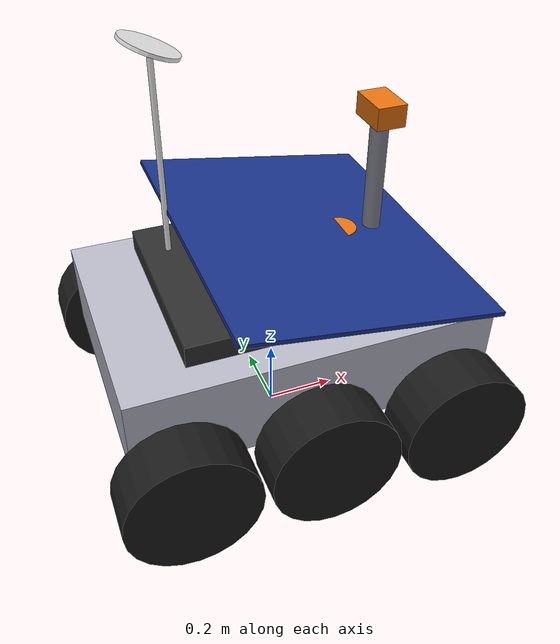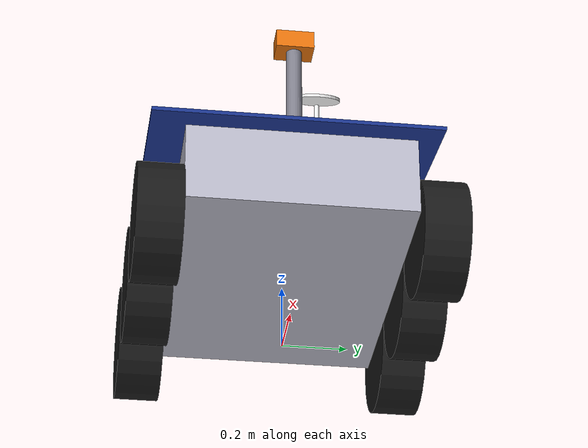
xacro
<?xml version="1.0"?>
<robot name="lunar_rover" xmlns:xacro="http://www.ros.org/wiki/xacro">

  <!-- ═══════════════════════════════════════════════════════════════════════
       MATERIAL DEFINITIONS
  ═══════════════════════════════════════════════════════════════════════════ -->
  <material name="chassis_silver">
    <color rgba="0.72 0.72 0.78 1.0"/>
  </material>
  <material name="dark_grey">
    <color rgba="0.18 0.18 0.18 1.0"/>
  </material>
  <material name="rubber_black">
    <color rgba="0.10 0.10 0.10 1.0"/>
  </material>
  <material name="solar_blue">
    <color rgba="0.10 0.20 0.55 1.0"/>
  </material>
  <material name="antenna_white">
    <color rgba="0.92 0.92 0.92 1.0"/>
  </material>
  <material name="sensor_orange">
    <color rgba="0.90 0.45 0.05 1.0"/>
  </material>
  <material name="mast_grey">
    <color rgba="0.50 0.50 0.55 1.0"/>
  </material>

  <!-- Solid box inertia: m, x=length, y=width, z=height -->
  <xacro:macro name="box_inertia" params="m x y z">
    <inertial>
      <mass value="${m}"/>
      <origin xyz="0 0 0" rpy="0 0 0"/>
      <inertia
        ixx="${(1.0/12.0) * m * (y*y + z*z)}"
        iyy="${(1.0/12.0) * m * (x*x + z*z)}"
        izz="${(1.0/12.0) * m * (x*x + y*y)}"
        ixy="0" ixz="0" iyz="0"/>
    </inertial>
  </xacro:macro>

  <!-- Solid cylinder inertia: m=mass, r=radius, l=length, axis along Z -->
  <xacro:macro name="cylinder_inertia" params="m r l">
    <inertial>
      <mass value="${m}"/>
      <origin xyz="0 0 0" rpy="0 0 0"/>
      <inertia
        ixx="${(1.0/12.0) * m * (3.0*r*r + l*l)}"
        iyy="${(1.0/12.0) * m * (3.0*r*r + l*l)}"
        izz="${0.5 * m * r * r}"
        ixy="0" ixz="0" iyz="0"/>
    </inertial>
  </xacro:macro>

  <!-- Thin cylinder inertia for wheel (axis along Y after rpy="1.5707 0 0") -->
  <xacro:macro name="wheel_inertia" params="m r l">
    <inertial>
      <mass value="${m}"/>
      <origin xyz="0 0 0" rpy="0 0 0"/>
      <inertia
        ixx="${(1.0/12.0) * m * (3.0*r*r + l*l)}"
        iyy="${0.5 * m * r * r}"
        izz="${(1.0/12.0) * m * (3.0*r*r + l*l)}"
        ixy="0" ixz="0" iyz="0"/>
    </inertial>
  </xacro:macro>

  <!-- ═══════════════════════════════════════════════════════════════════════
       BASE FOOTPRINT — The grounded TF origin
  ═══════════════════════════════════════════════════════════════════════════ -->
  <link name="base_footprint"/>

  <joint name="base_footprint_joint" type="fixed">
    <parent link="base_footprint"/>
    <child link="base_link"/>
    <!-- Chassis centre is 0.330m above ground (wheel_radius=0.18, wheel_joint_z=-0.150) -->
    <origin xyz="0 0 0.330" rpy="0 0 0"/>
  </joint>

  <link name="base_link">

    <!-- Main body box -->
    <visual>
      <origin xyz="0 0 0" rpy="0 0 0"/>
      <geometry>
        <box size="1.0 0.7 0.25"/>
      </geometry>
      <material name="chassis_silver"/>
    </visual>

    <collision>
      <origin xyz="0 0 0" rpy="0 0 0"/>
      <geometry>
        <box size="1.0 0.7 0.25"/>
      </geometry>
    </collision>

    <!-- Chassis inertia: 15kg, 1.0 x 0.7 x 0.25 -->
    <xacro:box_inertia m="15.0" x="1.0" y="0.7" z="0.25"/>

  </link>

  <!-- Equipment deck on top of chassis -->
  <joint name="deck_joint" type="fixed">
    <parent link="base_link"/>
    <child link="equipment_deck"/>
    <origin xyz="0 0 0.165" rpy="0 0 0"/>
  </joint>

  <link name="equipment_deck">
    <visual>
      <origin xyz="0 0 0" rpy="0 0 0"/>
      <geometry>
        <box size="0.65 0.55 0.06"/>
      </geometry>
      <material name="dark_grey"/>
    </visual>
    <collision>
      <origin xyz="0 0 0" rpy="0 0 0"/>
      <geometry>
        <box size="0.65 0.55 0.06"/>
      </geometry>
    </collision>
    <xacro:box_inertia m="1.0" x="0.65" y="0.55" z="0.06"/>
  </link>

  <joint name="solar_panel_joint" type="fixed">
    <parent link="equipment_deck"/>
    <child link="solar_panel"/>
    <!-- Raised above equipment deck, slight rearward tilt -->
    <origin xyz="0.1 0 0.10" rpy="0 0.15 0"/>
  </joint>

  <link name="solar_panel">
    <visual>
      <origin xyz="0 0 0" rpy="0 0 0"/>
      <geometry>
        <box size="0.7 0.9 0.012"/>
      </geometry>
      <material name="solar_blue"/>
    </visual>
    <collision>
      <origin xyz="0 0 0" rpy="0 0 0"/>
      <geometry>
        <box size="0.7 0.9 0.012"/>
      </geometry>
    </collision>
    <xacro:box_inertia m="0.8" x="0.7" y="0.9" z="0.012"/>
  </link>

  <joint name="camera_mast_joint" type="fixed">
    <parent link="equipment_deck"/>
    <child link="camera_mast"/>
    <origin xyz="0.30 0 0.20" rpy="0 0 0"/>
  </joint>

  <link name="camera_mast">
    <visual>
      <origin xyz="0 0 0" rpy="0 0 0"/>
      <geometry>
        <cylinder radius="0.025" length="0.40"/>
      </geometry>
      <material name="mast_grey"/>
    </visual>
    <collision>
      <origin xyz="0 0 0" rpy="0 0 0"/>
      <geometry>
        <cylinder radius="0.025" length="0.40"/>
      </geometry>
    </collision>
    <xacro:cylinder_inertia m="0.4" r="0.025" l="0.40"/>
  </link>

  <!-- Camera head at top of mast -->
  <joint name="camera_head_joint" type="fixed">
    <parent link="camera_mast"/>
    <child link="camera_link"/>
    <origin xyz="0 0 0.22" rpy="0 0 0"/>
  </joint>

  <link name="camera_link">
    <visual>
      <origin xyz="0 0 0" rpy="0 0 0"/>
      <geometry>
        <box size="0.08 0.12 0.06"/>
      </geometry>
      <material name="sensor_orange"/>
    </visual>
    <collision>
      <origin xyz="0 0 0" rpy="0 0 0"/>
      <geometry>
        <box size="0.08 0.12 0.06"/>
      </geometry>
    </collision>
    <xacro:box_inertia m="0.3" x="0.08" y="0.12" z="0.06"/>
  </link>

  <!-- Camera optical frame (for RViz camera display) -->
  <joint name="camera_optical_joint" type="fixed">
    <parent link="camera_link"/>
    <child link="camera_optical_frame"/>
    <!-- Rotate to camera convention: Z forward, X right, Y down -->
    <origin xyz="0.04 0 0" rpy="${-pi/2} 0 ${-pi/2}"/>
  </joint>

  <link name="camera_optical_frame"/>

  <joint name="antenna_joint" type="fixed">
    <parent link="equipment_deck"/>
    <child link="antenna"/>
    <origin xyz="-0.25 0.15 0.30" rpy="0 0 0"/>
  </joint>

  <link name="antenna">
    <visual>
      <origin xyz="0 0 0" rpy="0 0 0"/>
      <geometry>
        <cylinder radius="0.008" length="0.55"/>
      </geometry>
      <material name="antenna_white"/>
    </visual>
    <collision>
      <origin xyz="0 0 0" rpy="0 0 0"/>
      <geometry>
        <cylinder radius="0.008" length="0.55"/>
      </geometry>
    </collision>
    <xacro:cylinder_inertia m="0.15" r="0.008" l="0.55"/>
  </link>

  <!-- Antenna dish at top -->
  <joint name="antenna_dish_joint" type="fixed">
    <parent link="antenna"/>
    <child link="antenna_dish"/>
    <origin xyz="0 0 0.30" rpy="0 0.4 0"/>
  </joint>

  <link name="antenna_dish">
    <visual>
      <origin xyz="0 0 0" rpy="0 0 0"/>
      <geometry>
        <cylinder radius="0.08" length="0.01"/>
      </geometry>
      <material name="antenna_white"/>
    </visual>
    <collision>
      <origin xyz="0 0 0" rpy="0 0 0"/>
      <geometry>
        <cylinder radius="0.08" length="0.01"/>
      </geometry>
    </collision>
    <xacro:cylinder_inertia m="0.05" r="0.08" l="0.01"/>
  </link>

  <joint name="lidar_joint" type="fixed">
    <parent link="equipment_deck"/>
    <child link="lidar_link"/>
    <origin xyz="0.20 0 0.06" rpy="0 0 0"/>
  </joint>

  <link name="lidar_link">
    <visual>
      <origin xyz="0 0 0" rpy="0 0 0"/>
      <geometry>
        <cylinder radius="0.05" length="0.06"/>
      </geometry>
      <material name="sensor_orange"/>
    </visual>
    <collision>
      <origin xyz="0 0 0" rpy="0 0 0"/>
      <geometry>
        <cylinder radius="0.05" length="0.06"/>
      </geometry>
    </collision>
    <xacro:cylinder_inertia m="0.3" r="0.05" l="0.06"/>
  </link>

  <joint name="imu_joint" type="fixed">
    <parent link="base_link"/>
    <child link="imu_link"/>
    <origin xyz="0 0 0.07" rpy="0 0 0"/>
  </joint>

  <link name="imu_link">
    <visual>
      <origin xyz="0 0 0" rpy="0 0 0"/>
      <geometry>
        <box size="0.04 0.04 0.02"/>
      </geometry>
      <material name="dark_grey"/>
    </visual>
    <xacro:box_inertia m="0.05" x="0.04" y="0.04" z="0.02"/>
  </link>

  <gazebo reference="lidar_link">
    <sensor name="lidar" type="gpu_lidar">
      <topic>scan</topic>
      <gz_frame_id>lidar_link</gz_frame_id>
      <update_rate>10</update_rate>
      <always_on>1</always_on>
      <visualize>true</visualize>
      <lidar>
        <scan>
          <horizontal>
            <samples>360</samples>
            <resolution>1</resolution>
            <min_angle>-3.14159</min_angle>
            <max_angle>3.14159</max_angle>
          </horizontal>
          <vertical>
            <samples>1</samples>
            <resolution>1</resolution>
            <min_angle>0</min_angle>
            <max_angle>0</max_angle>
          </vertical>
        </scan>
        <range>
          <min>0.12</min>
          <max>12.0</max>
          <resolution>0.01</resolution>
        </range>
        <noise>
          <type>gaussian</type>
          <mean>0.0</mean>
          <stddev>0.01</stddev>
        </noise>
      </lidar>
    </sensor>
  </gazebo>

  <gazebo reference="imu_link">
    <sensor name="imu" type="imu">
      <topic>imu/data</topic>
      <gz_frame_id>imu_link</gz_frame_id>
      <update_rate>50</update_rate>
      <always_on>1</always_on>
      <imu>
        <angular_velocity>
          <x><noise type="gaussian"><mean>0</mean><stddev>0.002</stddev></noise></x>
          <y><noise type="gaussian"><mean>0</mean><stddev>0.002</stddev></noise></y>
          <z><noise type="gaussian"><mean>0</mean><stddev>0.002</stddev></noise></z>
        </angular_velocity>
        <linear_acceleration>
          <x><noise type="gaussian"><mean>0</mean><stddev>0.017</stddev></noise></x>
          <y><noise type="gaussian"><mean>0</mean><stddev>0.017</stddev></noise></y>
          <z><noise type="gaussian"><mean>0</mean><stddev>0.017</stddev></noise></z>
        </linear_acceleration>
      </imu>
    </sensor>
  </gazebo>

  <xacro:macro name="wheel" params="name x y mu:=0.8">

    <!-- Wheel link: cylinder rotated so its axis is along Y (left-right) -->
    <link name="${name}_wheel">

      <visual>
        <!-- rpy="1.5707 0 0" rotates Z-cylinder to Y-axis -->
        <origin xyz="0 0 0" rpy="1.5707963 0 0"/>
        <geometry>
          <cylinder radius="0.18" length="0.14"/>
        </geometry>
        <material name="rubber_black"/>
      </visual>

      <collision name="${name}_wheel_collision">
        <origin xyz="0 0 0" rpy="1.5707963 0 0"/>
        <geometry>
          <cylinder radius="0.18" length="0.14"/>
        </geometry>
      </collision>

      <!-- Wheel inertia: 1.5kg, radius=0.18, length=0.14 -->
      <!-- After rpy rotation, spin axis is Y, so use wheel_inertia macro -->
      <xacro:wheel_inertia m="1.5" r="0.18" l="0.14"/>

    </link>

    <!-- Continuous joint connecting wheel to base chassis -->
    <joint name="${name}_joint" type="continuous">
      <parent link="base_link"/>
      <child link="${name}_wheel"/>
      <!-- Position: x=fore/aft, y=lateral (±side), z=-0.150 (below chassis centre) -->
      <origin xyz="${x} ${y} -0.150" rpy="0 0 0"/>
      <!-- Rotation axis along Y (wheel spins around its axle) -->
      <axis xyz="0 1 0"/>
      <dynamics damping="0.1" friction="0.05"/>
      <limit effort="100" velocity="10"/>
    </joint>

    <!-- Gazebo physics & material properties for this wheel -->
    <gazebo reference="${name}_wheel">
      <collision name="${name}_wheel_collision">
        <surface>
          <friction>
            <ode>
              <mu>${mu}</mu>
              <mu2>${mu}</mu2>
              <fdir1>1 0 0</fdir1>
            </ode>
            <bullet>
              <friction>${mu}</friction>
              <friction2>${mu}</friction2>
              <fdir1>1 0 0</fdir1>
            </bullet>
          </friction>
          <contact>
            <ode>
              <kp>50000.0</kp>
              <kd>5000.0</kd>
              <min_depth>0.0001</min_depth>
              <max_vel>0.05</max_vel>
            </ode>
            <bullet>
              <kp>50000.0</kp>
              <kd>5000.0</kd>
            </bullet>
          </contact>
        </surface>
      </collision>
      <material>Gazebo/Black</material>
    </gazebo>

  </xacro:macro>

  <!-- Front wheels -->
  <xacro:wheel name="front_left"  x="0.38"  y="0.42"  mu="0.75"/>
  <xacro:wheel name="front_right" x="0.38"  y="-0.42" mu="0.75"/>
  <!-- Middle wheels (widest track for stability, provides primary turning traction) -->
  <xacro:wheel name="mid_left"    x="0.0"   y="0.42"  mu="0.85"/>
  <xacro:wheel name="mid_right"   x="0.0"   y="-0.42" mu="0.85"/>
  <!-- Rear wheels -->
  <xacro:wheel name="rear_left"   x="-0.38" y="0.42"  mu="0.75"/>
  <xacro:wheel name="rear_right"  x="-0.38" y="-0.42" mu="0.75"/>

  <!-- Chassis metallic shine -->
  <gazebo reference="base_link">
    <material>Gazebo/GreyTransparent</material>
    <mu1>0.3</mu1>
    <mu2>0.3</mu2>
  </gazebo>

  <gazebo>
    <plugin filename="gz-sim-diff-drive-system"
            name="gz::sim::systems::DiffDrive">
      <left_joint>mid_left_joint</left_joint>
      <right_joint>mid_right_joint</right_joint>
      <wheel_separation>0.84</wheel_separation>
      <wheel_radius>0.18</wheel_radius>
      <max_linear_velocity>0.5</max_linear_velocity>
      <min_linear_velocity>-0.5</min_linear_velocity>
      <max_angular_velocity>1.0</max_angular_velocity>
      <min_angular_velocity>-1.0</min_angular_velocity>
      <max_linear_acceleration>1.5</max_linear_acceleration>
      <max_angular_acceleration>2.0</max_angular_acceleration>
      <topic>cmd_vel</topic>
      <odom_topic>odometry</odom_topic>
      <tf_topic>tf</tf_topic>
      <frame_id>odom</frame_id>
      <child_frame_id>base_footprint</child_frame_id>
      <odom_publish_frequency>30</odom_publish_frequency>
    </plugin>
  </gazebo>

</robot>
